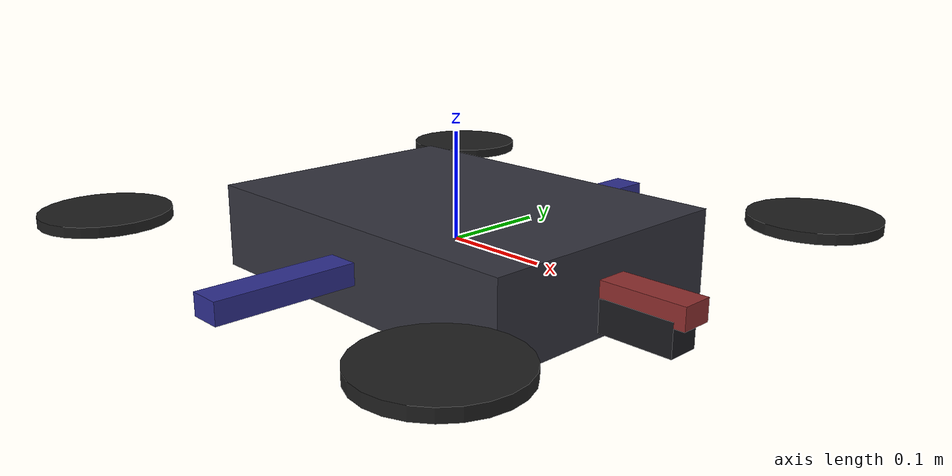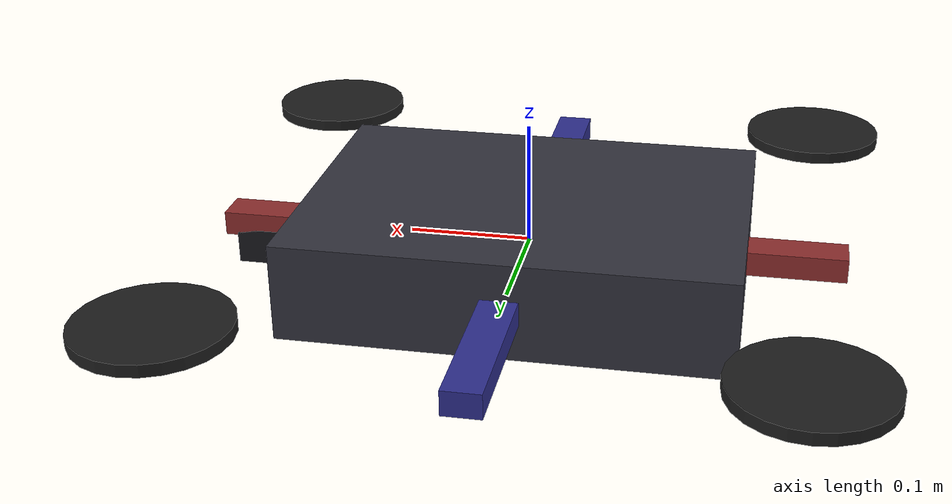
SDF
<?xml version="1.0" ?>
<sdf version="1.9">
  <model name="uav_d435i_platform">
    <static>true</static>
    <self_collide>false</self_collide>

    <link name="base_link">
      <gravity>false</gravity>
      <velocity_decay>
        <linear>0.2</linear>
        <angular>0.2</angular>
      </velocity_decay>
      <inertial>
        <mass>1.4</mass>
        <inertia>
          <ixx>0.03</ixx>
          <ixy>0.0</ixy>
          <ixz>0.0</ixz>
          <iyy>0.03</iyy>
          <iyz>0.0</iyz>
          <izz>0.05</izz>
        </inertia>
      </inertial>

      <visual name="body_visual">
        <geometry>
          <box>
            <size>0.36 0.26 0.08</size>
          </box>
        </geometry>
        <material>
          <ambient>0.16 0.16 0.18 1</ambient>
          <diffuse>0.20 0.20 0.24 1</diffuse>
        </material>
      </visual>

      <visual name="front_camera_housing">
        <pose>0.19 0.0 -0.02 0 0 0</pose>
        <geometry>
          <box>
            <size>0.12 0.03 0.03</size>
          </box>
        </geometry>
        <material>
          <ambient>0.06 0.06 0.07 1</ambient>
          <diffuse>0.10 0.10 0.12 1</diffuse>
        </material>
      </visual>

      <visual name="arm_x">
        <geometry>
          <box>
            <size>0.52 0.03 0.02</size>
          </box>
        </geometry>
        <material>
          <ambient>0.42 0.14 0.14 1</ambient>
          <diffuse>0.56 0.18 0.18 1</diffuse>
        </material>
      </visual>

      <visual name="arm_y">
        <geometry>
          <box>
            <size>0.03 0.52 0.02</size>
          </box>
        </geometry>
        <material>
          <ambient>0.14 0.14 0.42 1</ambient>
          <diffuse>0.18 0.18 0.56 1</diffuse>
        </material>
      </visual>

      <visual name="rotor_fl">
        <pose>0.23 0.23 0.02 0 0 0</pose>
        <geometry>
          <cylinder>
            <radius>0.06</radius>
            <length>0.01</length>
          </cylinder>
        </geometry>
        <material>
          <ambient>0.08 0.08 0.08 1</ambient>
          <diffuse>0.12 0.12 0.12 1</diffuse>
        </material>
      </visual>

      <visual name="rotor_fr">
        <pose>0.23 -0.23 0.02 0 0 0</pose>
        <geometry>
          <cylinder>
            <radius>0.06</radius>
            <length>0.01</length>
          </cylinder>
        </geometry>
        <material>
          <ambient>0.08 0.08 0.08 1</ambient>
          <diffuse>0.12 0.12 0.12 1</diffuse>
        </material>
      </visual>

      <visual name="rotor_rl">
        <pose>-0.23 0.23 0.02 0 0 0</pose>
        <geometry>
          <cylinder>
            <radius>0.06</radius>
            <length>0.01</length>
          </cylinder>
        </geometry>
        <material>
          <ambient>0.08 0.08 0.08 1</ambient>
          <diffuse>0.12 0.12 0.12 1</diffuse>
        </material>
      </visual>

      <visual name="rotor_rr">
        <pose>-0.23 -0.23 0.02 0 0 0</pose>
        <geometry>
          <cylinder>
            <radius>0.06</radius>
            <length>0.01</length>
          </cylinder>
        </geometry>
        <material>
          <ambient>0.08 0.08 0.08 1</ambient>
          <diffuse>0.12 0.12 0.12 1</diffuse>
        </material>
      </visual>

      <sensor name="d435i_color" type="camera">
        <pose>0.30 0.0 0.05 0 0 0</pose>
        <camera>
          <horizontal_fov>1.211</horizontal_fov>
          <image>
            <width>640</width>
            <height>480</height>
            <format>R8G8B8</format>
          </image>
          <clip>
            <near>0.1</near>
            <far>10.0</far>
          </clip>
        </camera>
        <always_on>true</always_on>
        <update_rate>30</update_rate>
        <visualize>false</visualize>
        <topic>rgbd_camera_color</topic>
        <enable_metrics>false</enable_metrics>
      </sensor>

      <sensor name="d435i_depth" type="depth_camera">
        <pose>0.30 0.0 0.05 0 0 0</pose>
        <camera>
          <horizontal_fov>1.518</horizontal_fov>
          <image>
            <width>640</width>
            <height>480</height>
            <format>R_FLOAT32</format>
          </image>
          <clip>
            <near>0.1</near>
            <far>10.0</far>
          </clip>
          <depth_camera>
            <output>depths</output>
          </depth_camera>
          <noise>
            <type>gaussian</type>
            <mean>0.0</mean>
            <stddev>0.010</stddev>
          </noise>
        </camera>
        <always_on>true</always_on>
        <update_rate>30</update_rate>
        <visualize>false</visualize>
        <topic>rgbd_camera_depth</topic>
        <enable_metrics>false</enable_metrics>
      </sensor>

      <sensor name="d435i_imu" type="imu">
        <pose>0.02 0 0 0 0 0</pose>
        <always_on>true</always_on>
        <update_rate>200</update_rate>
        <visualize>false</visualize>
        <topic>camera/imu</topic>
        <enable_metrics>true</enable_metrics>
        <imu>
          <angular_velocity>
            <x>
              <noise type="gaussian">
                <mean>0.0</mean>
                <stddev>0.002</stddev>
              </noise>
            </x>
            <y>
              <noise type="gaussian">
                <mean>0.0</mean>
                <stddev>0.002</stddev>
              </noise>
            </y>
            <z>
              <noise type="gaussian">
                <mean>0.0</mean>
                <stddev>0.002</stddev>
              </noise>
            </z>
          </angular_velocity>
          <linear_acceleration>
            <x>
              <noise type="gaussian">
                <mean>0.0</mean>
                <stddev>0.02</stddev>
              </noise>
            </x>
            <y>
              <noise type="gaussian">
                <mean>0.0</mean>
                <stddev>0.02</stddev>
              </noise>
            </y>
            <z>
              <noise type="gaussian">
                <mean>0.0</mean>
                <stddev>0.02</stddev>
              </noise>
            </z>
          </linear_acceleration>
        </imu>
      </sensor>

      <sensor name="uav_lidar" type="gpu_lidar">
        <pose>0.18 0 0.06 0 0 0</pose>
        <always_on>true</always_on>
        <update_rate>10</update_rate>
        <visualize>false</visualize>
        <topic>uav_lidar/scan</topic>
        <ray>
          <scan>
            <horizontal>
              <samples>720</samples>
              <resolution>1</resolution>
              <min_angle>-3.1415926</min_angle>
              <max_angle>3.1415926</max_angle>
            </horizontal>
            <vertical>
              <samples>60</samples>
              <resolution>1</resolution>
              <min_angle>-0.122173</min_angle>
              <max_angle>0.907571</max_angle>
            </vertical>
          </scan>
          <range>
            <min>0.1</min>
            <max>70.0</max>
            <resolution>0.01</resolution>
          </range>
        </ray>
      </sensor>
    </link>
  </model>
</sdf>
